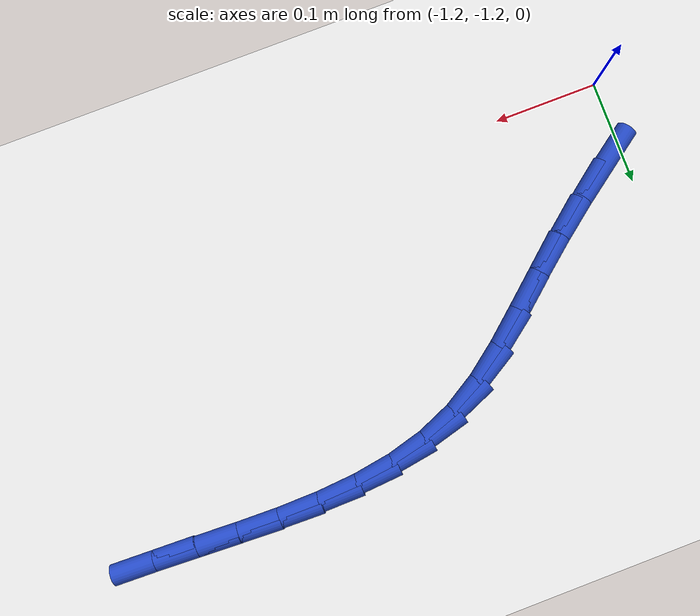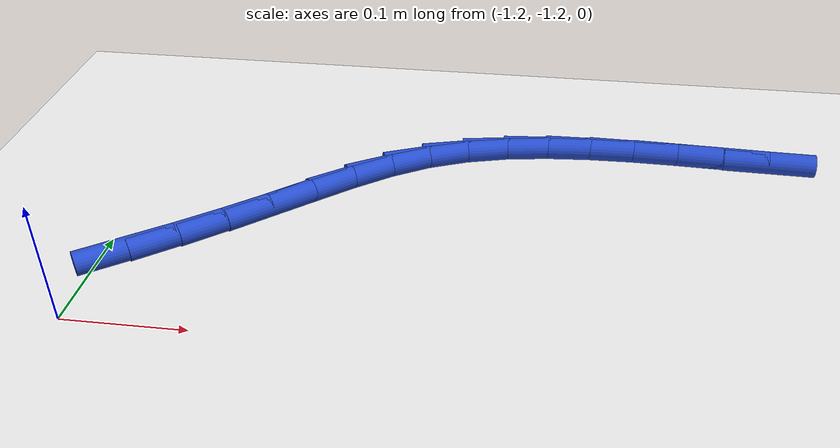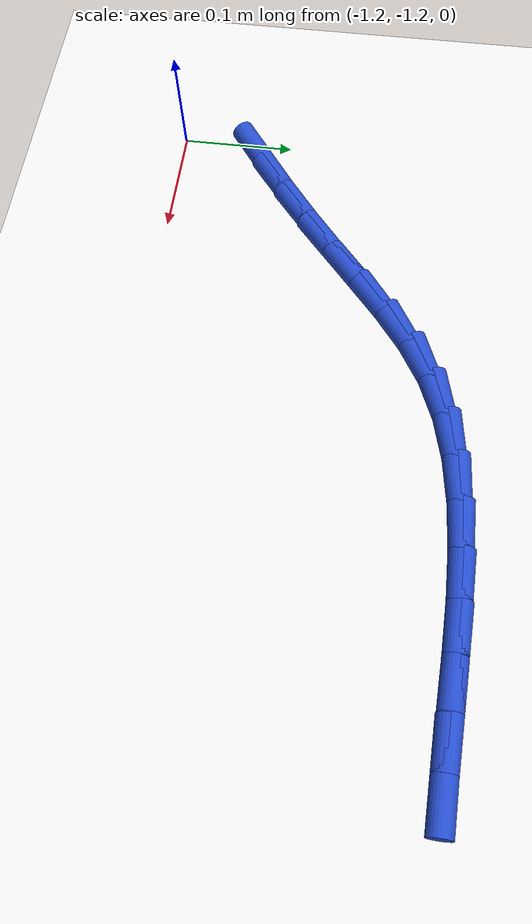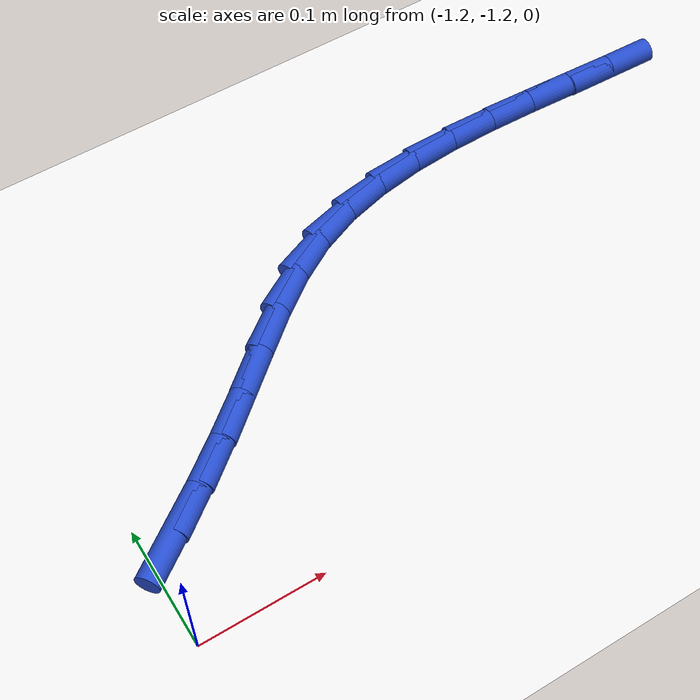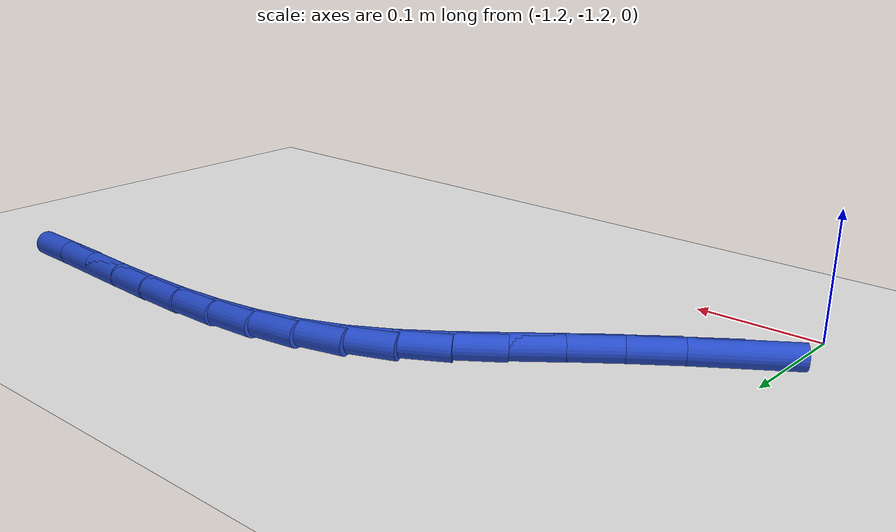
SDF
<sdf version="1.6">
 <world name="default">
  <model name="ground_plane">
   <static>1</static>
   <link name="link">
    <collision name="collision">
     <geometry><plane><normal>0 0 1</normal><size>100 100</size></plane></geometry>
     <surface><friction><ode><mu>100</mu><mu2>50</mu2></ode></friction></surface>
    </collision>
    <visual name="visual">
     <cast_shadows>0</cast_shadows>
     <geometry><plane><normal>0 0 1</normal><size>100 100</size></plane></geometry>
     <material>
      <script><uri>file://media/materials/scripts/gazebo.material</uri><name>Gazebo/WhiteGlow</name></script>
     </material>
    </visual>
   </link>
  </model>
  <model name="line">
   <link name="link_152">
    <pose>-1.177755759269712 -1.1234539185326644 0.01 0 1.57 0.6304614467406489</pose>
    <collision name="collision">
     <geometry><cylinder><radius>0.01</radius><length>0.08</length></cylinder></geometry>
    </collision>
    <visual name="visual">
     <material>
      <script><name>Gazebo/Blue</name><uri>file://media/materials/scripts/gazebo.material</uri></script>
     </material>
     <geometry><cylinder><radius>0.01</radius><length>0.08</length></cylinder></geometry>
    </visual>
   </link>
   <link name="link_153">
    <pose>-1.144747109492719 -1.0993634888847847 0.01 0 1.57 0.6625922107778093</pose>
    <collision name="collision">
     <geometry><cylinder><radius>0.01</radius><length>0.08</length></cylinder></geometry>
    </collision>
    <visual name="visual">
     <material>
      <script><name>Gazebo/Blue</name><uri>file://media/materials/scripts/gazebo.material</uri></script>
     </material>
     <geometry><cylinder><radius>0.01</radius><length>0.08</length></cylinder></geometry>
    </visual>
   </link>
   <link name="link_154">
    <pose>-1.1126955296355738 -1.0743547021783773 0.01 0 1.57 0.6914432806895126</pose>
    <collision name="collision">
     <geometry><cylinder><radius>0.01</radius><length>0.08</length></cylinder></geometry>
    </collision>
    <visual name="visual">
     <material>
      <script><name>Gazebo/Blue</name><uri>file://media/materials/scripts/gazebo.material</uri></script>
     </material>
     <geometry><cylinder><radius>0.01</radius><length>0.08</length></cylinder></geometry>
    </visual>
   </link>
   <link name="link_155">
    <pose>-1.0817273137564984 -1.0487202841123182 0.01 0 1.57 0.7148733843746174</pose>
    <collision name="collision">
     <geometry><cylinder><radius>0.01</radius><length>0.08</length></cylinder></geometry>
    </collision>
    <visual name="visual">
     <material>
      <script><name>Gazebo/Blue</name><uri>file://media/materials/scripts/gazebo.material</uri></script>
     </material>
     <geometry><cylinder><radius>0.01</radius><length>0.08</length></cylinder></geometry>
    </visual>
   </link>
   <link name="link_156">
    <pose>-1.0518988718856566 -1.0228280581060332 0.01 0 1.57 0.7073578782995956</pose>
    <collision name="collision">
     <geometry><cylinder><radius>0.01</radius><length>0.08</length></cylinder></geometry>
    </collision>
    <visual name="visual">
     <material>
      <script><name>Gazebo/Blue</name><uri>file://media/materials/scripts/gazebo.material</uri></script>
     </material>
     <geometry><cylinder><radius>0.01</radius><length>0.08</length></cylinder></geometry>
    </visual>
   </link>
   <link name="link_157">
    <pose>-1.022591220426767 -0.9977716288944682 0.01 0 1.57 0.651662502709968</pose>
    <collision name="collision">
     <geometry><cylinder><radius>0.01</radius><length>0.08</length></cylinder></geometry>
    </collision>
    <visual name="visual">
     <material>
      <script><name>Gazebo/Blue</name><uri>file://media/materials/scripts/gazebo.material</uri></script>
     </material>
     <geometry><cylinder><radius>0.01</radius><length>0.08</length></cylinder></geometry>
    </visual>
   </link>
   <link name="link_158">
    <pose>-0.9928069474867913 -0.975051262123037 0.01 0 1.57 0.5432930907923008</pose>
    <collision name="collision">
     <geometry><cylinder><radius>0.01</radius><length>0.08</length></cylinder></geometry>
    </collision>
    <visual name="visual">
     <material>
      <script><name>Gazebo/Blue</name><uri>file://media/materials/scripts/gazebo.material</uri></script>
     </material>
     <geometry><cylinder><radius>0.01</radius><length>0.08</length></cylinder></geometry>
    </visual>
   </link>
   <link name="link_159">
    <pose>-0.9615446114513608 -0.9561714733431349 0.01 0 1.57 0.39653270571201976</pose>
    <collision name="collision">
     <geometry><cylinder><radius>0.01</radius><length>0.08</length></cylinder></geometry>
    </collision>
    <visual name="visual">
     <material>
      <script><name>Gazebo/Blue</name><uri>file://media/materials/scripts/gazebo.material</uri></script>
     </material>
     <geometry><cylinder><radius>0.01</radius><length>0.08</length></cylinder></geometry>
    </visual>
   </link>
   <link name="link_160">
    <pose>-0.9280892492226149 -0.9421633084443932 0.01 0 1.57 0.2636185734908984</pose>
    <collision name="collision">
     <geometry><cylinder><radius>0.01</radius><length>0.08</length></cylinder></geometry>
    </collision>
    <visual name="visual">
     <material>
      <script><name>Gazebo/Blue</name><uri>file://media/materials/scripts/gazebo.material</uri></script>
     </material>
     <geometry><cylinder><radius>0.01</radius><length>0.08</length></cylinder></geometry>
    </visual>
   </link>
   <link name="link_161">
    <pose>-0.8926147726045541 -0.9325887492335022 0.01 0 1.57 0.1565390276545625</pose>
    <collision name="collision">
     <geometry><cylinder><radius>0.01</radius><length>0.08</length></cylinder></geometry>
    </collision>
    <visual name="visual">
     <material>
      <script><name>Gazebo/Blue</name><uri>file://media/materials/scripts/gazebo.material</uri></script>
     </material>
     <geometry><cylinder><radius>0.01</radius><length>0.08</length></cylinder></geometry>
    </visual>
   </link>
   <link name="link_162">
    <pose>-0.8554669774442242 -0.9267257007887615 0.01 0 1.57 0.07454927708484113</pose>
    <collision name="collision">
     <geometry><cylinder><radius>0.01</radius><length>0.08</length></cylinder></geometry>
    </collision>
    <visual name="visual">
     <material>
      <script><name>Gazebo/Blue</name><uri>file://media/materials/scripts/gazebo.material</uri></script>
     </material>
     <geometry><cylinder><radius>0.01</radius><length>0.08</length></cylinder></geometry>
    </visual>
   </link>
   <link name="link_163">
    <pose>-0.8169916595886713 -0.9238520681884711 0.01 0 1.57 0.015365163989973953</pose>
    <collision name="collision">
     <geometry><cylinder><radius>0.01</radius><length>0.08</length></cylinder></geometry>
    </collision>
    <visual name="visual">
     <material>
      <script><name>Gazebo/Blue</name><uri>file://media/materials/scripts/gazebo.material</uri></script>
     </material>
     <geometry><cylinder><radius>0.01</radius><length>0.08</length></cylinder></geometry>
    </visual>
   </link>
   <link name="link_164">
    <pose>-0.777534614884941 -0.9232457565109303 0.01 0 1.57 -0.023414144818346035</pose>
    <collision name="collision">
     <geometry><cylinder><radius>0.01</radius><length>0.08</length></cylinder></geometry>
    </collision>
    <visual name="visual">
     <material>
      <script><name>Gazebo/Blue</name><uri>file://media/materials/scripts/gazebo.material</uri></script>
     </material>
     <geometry><cylinder><radius>0.01</radius><length>0.08</length></cylinder></geometry>
    </visual>
   </link>
   <link name="link_165">
    <pose>-0.7374416391800795 -0.9241846708344386 0.01 0 1.57 -0.04360556709764226</pose>
    <collision name="collision">
     <geometry><cylinder><radius>0.01</radius><length>0.08</length></cylinder></geometry>
    </collision>
    <visual name="visual">
     <material>
      <script><name>Gazebo/Blue</name><uri>file://media/materials/scripts/gazebo.material</uri></script>
     </material>
     <geometry><cylinder><radius>0.01</radius><length>0.08</length></cylinder></geometry>
    </visual>
   </link>
   <link name="link_166">
    <pose>-0.6970585283211325 -0.925946716237296 0.01 0 1.57 -0.0461660176569526</pose>
    <collision name="collision">
     <geometry><cylinder><radius>0.01</radius><length>0.08</length></cylinder></geometry>
    </collision>
    <visual name="visual">
     <material>
      <script><name>Gazebo/Blue</name><uri>file://media/materials/scripts/gazebo.material</uri></script>
     </material>
     <geometry><cylinder><radius>0.01</radius><length>0.08</length></cylinder></geometry>
    </visual>
   </link>
   <link name="link_167">
    <pose>-0.6567310781551472 -0.9278097977978024 0.01 0 1.57 -0.031098096117686</pose>
    <collision name="collision">
     <geometry><cylinder><radius>0.01</radius><length>0.08</length></cylinder></geometry>
    </collision>
    <visual name="visual">
     <material>
      <script><name>Gazebo/Blue</name><uri>file://media/materials/scripts/gazebo.material</uri></script>
     </material>
     <geometry><cylinder><radius>0.01</radius><length>0.08</length></cylinder></geometry>
    </visual>
   </link>
  </model>
 </world>
</sdf>
